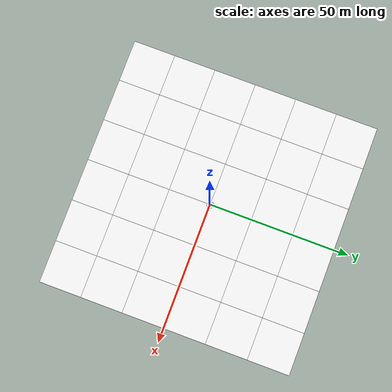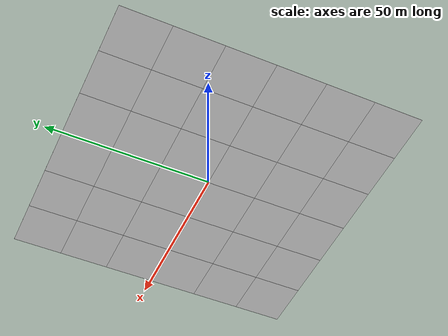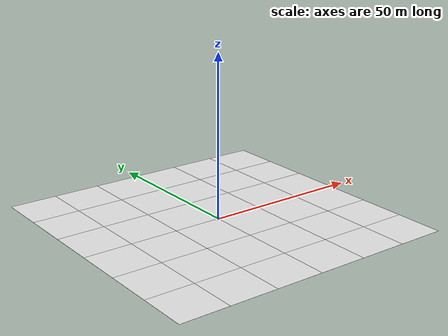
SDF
<?xml version="1.0" ?>
<sdf version="1.9">
  <model name="vio_ground">
    <static>true</static>
    <link name="link">
      <visual name="g0_0">
        <pose>-37.50 -37.50 0.01 0 0 0</pose>
        <cast_shadows>false</cast_shadows>
        <geometry><box><size>15.00 15.00 0.02</size></box></geometry>
        <material>
          <ambient>1 1 1 1</ambient>
          <diffuse>1 1 1 1</diffuse>
          <specular>0.05 0.05 0.05 1</specular>
          <pbr><metal>
            <albedo_map>model://vio_ground/materials/textures/ground0.png</albedo_map>
            <roughness>0.9</roughness>
            <metalness>0</metalness>
          </metal></pbr>
        </material>
      </visual>
      <visual name="g0_1">
        <pose>-37.50 -22.50 0.01 0 0 0</pose>
        <cast_shadows>false</cast_shadows>
        <geometry><box><size>15.00 15.00 0.02</size></box></geometry>
        <material>
          <ambient>1 1 1 1</ambient>
          <diffuse>1 1 1 1</diffuse>
          <specular>0.05 0.05 0.05 1</specular>
          <pbr><metal>
            <albedo_map>model://vio_ground/materials/textures/ground2.png</albedo_map>
            <roughness>0.9</roughness>
            <metalness>0</metalness>
          </metal></pbr>
        </material>
      </visual>
      <visual name="g0_2">
        <pose>-37.50 -7.50 0.01 0 0 0</pose>
        <cast_shadows>false</cast_shadows>
        <geometry><box><size>15.00 15.00 0.02</size></box></geometry>
        <material>
          <ambient>1 1 1 1</ambient>
          <diffuse>1 1 1 1</diffuse>
          <specular>0.05 0.05 0.05 1</specular>
          <pbr><metal>
            <albedo_map>model://vio_ground/materials/textures/ground0.png</albedo_map>
            <roughness>0.9</roughness>
            <metalness>0</metalness>
          </metal></pbr>
        </material>
      </visual>
      <visual name="g0_3">
        <pose>-37.50 7.50 0.01 0 0 0</pose>
        <cast_shadows>false</cast_shadows>
        <geometry><box><size>15.00 15.00 0.02</size></box></geometry>
        <material>
          <ambient>1 1 1 1</ambient>
          <diffuse>1 1 1 1</diffuse>
          <specular>0.05 0.05 0.05 1</specular>
          <pbr><metal>
            <albedo_map>model://vio_ground/materials/textures/ground2.png</albedo_map>
            <roughness>0.9</roughness>
            <metalness>0</metalness>
          </metal></pbr>
        </material>
      </visual>
      <visual name="g0_4">
        <pose>-37.50 22.50 0.01 0 0 0</pose>
        <cast_shadows>false</cast_shadows>
        <geometry><box><size>15.00 15.00 0.02</size></box></geometry>
        <material>
          <ambient>1 1 1 1</ambient>
          <diffuse>1 1 1 1</diffuse>
          <specular>0.05 0.05 0.05 1</specular>
          <pbr><metal>
            <albedo_map>model://vio_ground/materials/textures/ground0.png</albedo_map>
            <roughness>0.9</roughness>
            <metalness>0</metalness>
          </metal></pbr>
        </material>
      </visual>
      <visual name="g0_5">
        <pose>-37.50 37.50 0.01 0 0 0</pose>
        <cast_shadows>false</cast_shadows>
        <geometry><box><size>15.00 15.00 0.02</size></box></geometry>
        <material>
          <ambient>1 1 1 1</ambient>
          <diffuse>1 1 1 1</diffuse>
          <specular>0.05 0.05 0.05 1</specular>
          <pbr><metal>
            <albedo_map>model://vio_ground/materials/textures/ground2.png</albedo_map>
            <roughness>0.9</roughness>
            <metalness>0</metalness>
          </metal></pbr>
        </material>
      </visual>
      <visual name="g1_0">
        <pose>-22.50 -37.50 0.01 0 0 0</pose>
        <cast_shadows>false</cast_shadows>
        <geometry><box><size>15.00 15.00 0.02</size></box></geometry>
        <material>
          <ambient>1 1 1 1</ambient>
          <diffuse>1 1 1 1</diffuse>
          <specular>0.05 0.05 0.05 1</specular>
          <pbr><metal>
            <albedo_map>model://vio_ground/materials/textures/ground1.png</albedo_map>
            <roughness>0.9</roughness>
            <metalness>0</metalness>
          </metal></pbr>
        </material>
      </visual>
      <visual name="g1_1">
        <pose>-22.50 -22.50 0.01 0 0 0</pose>
        <cast_shadows>false</cast_shadows>
        <geometry><box><size>15.00 15.00 0.02</size></box></geometry>
        <material>
          <ambient>1 1 1 1</ambient>
          <diffuse>1 1 1 1</diffuse>
          <specular>0.05 0.05 0.05 1</specular>
          <pbr><metal>
            <albedo_map>model://vio_ground/materials/textures/ground3.png</albedo_map>
            <roughness>0.9</roughness>
            <metalness>0</metalness>
          </metal></pbr>
        </material>
      </visual>
      <visual name="g1_2">
        <pose>-22.50 -7.50 0.01 0 0 0</pose>
        <cast_shadows>false</cast_shadows>
        <geometry><box><size>15.00 15.00 0.02</size></box></geometry>
        <material>
          <ambient>1 1 1 1</ambient>
          <diffuse>1 1 1 1</diffuse>
          <specular>0.05 0.05 0.05 1</specular>
          <pbr><metal>
            <albedo_map>model://vio_ground/materials/textures/ground1.png</albedo_map>
            <roughness>0.9</roughness>
            <metalness>0</metalness>
          </metal></pbr>
        </material>
      </visual>
      <visual name="g1_3">
        <pose>-22.50 7.50 0.01 0 0 0</pose>
        <cast_shadows>false</cast_shadows>
        <geometry><box><size>15.00 15.00 0.02</size></box></geometry>
        <material>
          <ambient>1 1 1 1</ambient>
          <diffuse>1 1 1 1</diffuse>
          <specular>0.05 0.05 0.05 1</specular>
          <pbr><metal>
            <albedo_map>model://vio_ground/materials/textures/ground3.png</albedo_map>
            <roughness>0.9</roughness>
            <metalness>0</metalness>
          </metal></pbr>
        </material>
      </visual>
      <visual name="g1_4">
        <pose>-22.50 22.50 0.01 0 0 0</pose>
        <cast_shadows>false</cast_shadows>
        <geometry><box><size>15.00 15.00 0.02</size></box></geometry>
        <material>
          <ambient>1 1 1 1</ambient>
          <diffuse>1 1 1 1</diffuse>
          <specular>0.05 0.05 0.05 1</specular>
          <pbr><metal>
            <albedo_map>model://vio_ground/materials/textures/ground1.png</albedo_map>
            <roughness>0.9</roughness>
            <metalness>0</metalness>
          </metal></pbr>
        </material>
      </visual>
      <visual name="g1_5">
        <pose>-22.50 37.50 0.01 0 0 0</pose>
        <cast_shadows>false</cast_shadows>
        <geometry><box><size>15.00 15.00 0.02</size></box></geometry>
        <material>
          <ambient>1 1 1 1</ambient>
          <diffuse>1 1 1 1</diffuse>
          <specular>0.05 0.05 0.05 1</specular>
          <pbr><metal>
            <albedo_map>model://vio_ground/materials/textures/ground3.png</albedo_map>
            <roughness>0.9</roughness>
            <metalness>0</metalness>
          </metal></pbr>
        </material>
      </visual>
      <visual name="g2_0">
        <pose>-7.50 -37.50 0.01 0 0 0</pose>
        <cast_shadows>false</cast_shadows>
        <geometry><box><size>15.00 15.00 0.02</size></box></geometry>
        <material>
          <ambient>1 1 1 1</ambient>
          <diffuse>1 1 1 1</diffuse>
          <specular>0.05 0.05 0.05 1</specular>
          <pbr><metal>
            <albedo_map>model://vio_ground/materials/textures/ground2.png</albedo_map>
            <roughness>0.9</roughness>
            <metalness>0</metalness>
          </metal></pbr>
        </material>
      </visual>
      <visual name="g2_1">
        <pose>-7.50 -22.50 0.01 0 0 0</pose>
        <cast_shadows>false</cast_shadows>
        <geometry><box><size>15.00 15.00 0.02</size></box></geometry>
        <material>
          <ambient>1 1 1 1</ambient>
          <diffuse>1 1 1 1</diffuse>
          <specular>0.05 0.05 0.05 1</specular>
          <pbr><metal>
            <albedo_map>model://vio_ground/materials/textures/ground0.png</albedo_map>
            <roughness>0.9</roughness>
            <metalness>0</metalness>
          </metal></pbr>
        </material>
      </visual>
      <visual name="g2_2">
        <pose>-7.50 -7.50 0.01 0 0 0</pose>
        <cast_shadows>false</cast_shadows>
        <geometry><box><size>15.00 15.00 0.02</size></box></geometry>
        <material>
          <ambient>1 1 1 1</ambient>
          <diffuse>1 1 1 1</diffuse>
          <specular>0.05 0.05 0.05 1</specular>
          <pbr><metal>
            <albedo_map>model://vio_ground/materials/textures/ground2.png</albedo_map>
            <roughness>0.9</roughness>
            <metalness>0</metalness>
          </metal></pbr>
        </material>
      </visual>
      <visual name="g2_3">
        <pose>-7.50 7.50 0.01 0 0 0</pose>
        <cast_shadows>false</cast_shadows>
        <geometry><box><size>15.00 15.00 0.02</size></box></geometry>
        <material>
          <ambient>1 1 1 1</ambient>
          <diffuse>1 1 1 1</diffuse>
          <specular>0.05 0.05 0.05 1</specular>
          <pbr><metal>
            <albedo_map>model://vio_ground/materials/textures/ground0.png</albedo_map>
            <roughness>0.9</roughness>
            <metalness>0</metalness>
          </metal></pbr>
        </material>
      </visual>
      <visual name="g2_4">
        <pose>-7.50 22.50 0.01 0 0 0</pose>
        <cast_shadows>false</cast_shadows>
        <geometry><box><size>15.00 15.00 0.02</size></box></geometry>
        <material>
          <ambient>1 1 1 1</ambient>
          <diffuse>1 1 1 1</diffuse>
          <specular>0.05 0.05 0.05 1</specular>
          <pbr><metal>
            <albedo_map>model://vio_ground/materials/textures/ground2.png</albedo_map>
            <roughness>0.9</roughness>
            <metalness>0</metalness>
          </metal></pbr>
        </material>
      </visual>
      <visual name="g2_5">
        <pose>-7.50 37.50 0.01 0 0 0</pose>
        <cast_shadows>false</cast_shadows>
        <geometry><box><size>15.00 15.00 0.02</size></box></geometry>
        <material>
          <ambient>1 1 1 1</ambient>
          <diffuse>1 1 1 1</diffuse>
          <specular>0.05 0.05 0.05 1</specular>
          <pbr><metal>
            <albedo_map>model://vio_ground/materials/textures/ground0.png</albedo_map>
            <roughness>0.9</roughness>
            <metalness>0</metalness>
          </metal></pbr>
        </material>
      </visual>
      <visual name="g3_0">
        <pose>7.50 -37.50 0.01 0 0 0</pose>
        <cast_shadows>false</cast_shadows>
        <geometry><box><size>15.00 15.00 0.02</size></box></geometry>
        <material>
          <ambient>1 1 1 1</ambient>
          <diffuse>1 1 1 1</diffuse>
          <specular>0.05 0.05 0.05 1</specular>
          <pbr><metal>
            <albedo_map>model://vio_ground/materials/textures/ground3.png</albedo_map>
            <roughness>0.9</roughness>
            <metalness>0</metalness>
          </metal></pbr>
        </material>
      </visual>
      <visual name="g3_1">
        <pose>7.50 -22.50 0.01 0 0 0</pose>
        <cast_shadows>false</cast_shadows>
        <geometry><box><size>15.00 15.00 0.02</size></box></geometry>
        <material>
          <ambient>1 1 1 1</ambient>
          <diffuse>1 1 1 1</diffuse>
          <specular>0.05 0.05 0.05 1</specular>
          <pbr><metal>
            <albedo_map>model://vio_ground/materials/textures/ground1.png</albedo_map>
            <roughness>0.9</roughness>
            <metalness>0</metalness>
          </metal></pbr>
        </material>
      </visual>
      <visual name="g3_2">
        <pose>7.50 -7.50 0.01 0 0 0</pose>
        <cast_shadows>false</cast_shadows>
        <geometry><box><size>15.00 15.00 0.02</size></box></geometry>
        <material>
          <ambient>1 1 1 1</ambient>
          <diffuse>1 1 1 1</diffuse>
          <specular>0.05 0.05 0.05 1</specular>
          <pbr><metal>
            <albedo_map>model://vio_ground/materials/textures/ground3.png</albedo_map>
            <roughness>0.9</roughness>
            <metalness>0</metalness>
          </metal></pbr>
        </material>
      </visual>
      <visual name="g3_3">
        <pose>7.50 7.50 0.01 0 0 0</pose>
        <cast_shadows>false</cast_shadows>
        <geometry><box><size>15.00 15.00 0.02</size></box></geometry>
        <material>
          <ambient>1 1 1 1</ambient>
          <diffuse>1 1 1 1</diffuse>
          <specular>0.05 0.05 0.05 1</specular>
          <pbr><metal>
            <albedo_map>model://vio_ground/materials/textures/ground1.png</albedo_map>
            <roughness>0.9</roughness>
            <metalness>0</metalness>
          </metal></pbr>
        </material>
      </visual>
      <visual name="g3_4">
        <pose>7.50 22.50 0.01 0 0 0</pose>
        <cast_shadows>false</cast_shadows>
        <geometry><box><size>15.00 15.00 0.02</size></box></geometry>
        <material>
          <ambient>1 1 1 1</ambient>
          <diffuse>1 1 1 1</diffuse>
          <specular>0.05 0.05 0.05 1</specular>
          <pbr><metal>
            <albedo_map>model://vio_ground/materials/textures/ground3.png</albedo_map>
            <roughness>0.9</roughness>
            <metalness>0</metalness>
          </metal></pbr>
        </material>
      </visual>
      <visual name="g3_5">
        <pose>7.50 37.50 0.01 0 0 0</pose>
        <cast_shadows>false</cast_shadows>
        <geometry><box><size>15.00 15.00 0.02</size></box></geometry>
        <material>
          <ambient>1 1 1 1</ambient>
          <diffuse>1 1 1 1</diffuse>
          <specular>0.05 0.05 0.05 1</specular>
          <pbr><metal>
            <albedo_map>model://vio_ground/materials/textures/ground1.png</albedo_map>
            <roughness>0.9</roughness>
            <metalness>0</metalness>
          </metal></pbr>
        </material>
      </visual>
      <visual name="g4_0">
        <pose>22.50 -37.50 0.01 0 0 0</pose>
        <cast_shadows>false</cast_shadows>
        <geometry><box><size>15.00 15.00 0.02</size></box></geometry>
        <material>
          <ambient>1 1 1 1</ambient>
          <diffuse>1 1 1 1</diffuse>
          <specular>0.05 0.05 0.05 1</specular>
          <pbr><metal>
            <albedo_map>model://vio_ground/materials/textures/ground0.png</albedo_map>
            <roughness>0.9</roughness>
            <metalness>0</metalness>
          </metal></pbr>
        </material>
      </visual>
      <visual name="g4_1">
        <pose>22.50 -22.50 0.01 0 0 0</pose>
        <cast_shadows>false</cast_shadows>
        <geometry><box><size>15.00 15.00 0.02</size></box></geometry>
        <material>
          <ambient>1 1 1 1</ambient>
          <diffuse>1 1 1 1</diffuse>
          <specular>0.05 0.05 0.05 1</specular>
          <pbr><metal>
            <albedo_map>model://vio_ground/materials/textures/ground2.png</albedo_map>
            <roughness>0.9</roughness>
            <metalness>0</metalness>
          </metal></pbr>
        </material>
      </visual>
      <visual name="g4_2">
        <pose>22.50 -7.50 0.01 0 0 0</pose>
        <cast_shadows>false</cast_shadows>
        <geometry><box><size>15.00 15.00 0.02</size></box></geometry>
        <material>
          <ambient>1 1 1 1</ambient>
          <diffuse>1 1 1 1</diffuse>
          <specular>0.05 0.05 0.05 1</specular>
          <pbr><metal>
            <albedo_map>model://vio_ground/materials/textures/ground0.png</albedo_map>
            <roughness>0.9</roughness>
            <metalness>0</metalness>
          </metal></pbr>
        </material>
      </visual>
      <visual name="g4_3">
        <pose>22.50 7.50 0.01 0 0 0</pose>
        <cast_shadows>false</cast_shadows>
        <geometry><box><size>15.00 15.00 0.02</size></box></geometry>
        <material>
          <ambient>1 1 1 1</ambient>
          <diffuse>1 1 1 1</diffuse>
          <specular>0.05 0.05 0.05 1</specular>
          <pbr><metal>
            <albedo_map>model://vio_ground/materials/textures/ground2.png</albedo_map>
            <roughness>0.9</roughness>
            <metalness>0</metalness>
          </metal></pbr>
        </material>
      </visual>
      <visual name="g4_4">
        <pose>22.50 22.50 0.01 0 0 0</pose>
        <cast_shadows>false</cast_shadows>
        <geometry><box><size>15.00 15.00 0.02</size></box></geometry>
        <material>
          <ambient>1 1 1 1</ambient>
          <diffuse>1 1 1 1</diffuse>
          <specular>0.05 0.05 0.05 1</specular>
          <pbr><metal>
            <albedo_map>model://vio_ground/materials/textures/ground0.png</albedo_map>
            <roughness>0.9</roughness>
            <metalness>0</metalness>
          </metal></pbr>
        </material>
      </visual>
      <visual name="g4_5">
        <pose>22.50 37.50 0.01 0 0 0</pose>
        <cast_shadows>false</cast_shadows>
        <geometry><box><size>15.00 15.00 0.02</size></box></geometry>
        <material>
          <ambient>1 1 1 1</ambient>
          <diffuse>1 1 1 1</diffuse>
          <specular>0.05 0.05 0.05 1</specular>
          <pbr><metal>
            <albedo_map>model://vio_ground/materials/textures/ground2.png</albedo_map>
            <roughness>0.9</roughness>
            <metalness>0</metalness>
          </metal></pbr>
        </material>
      </visual>
      <visual name="g5_0">
        <pose>37.50 -37.50 0.01 0 0 0</pose>
        <cast_shadows>false</cast_shadows>
        <geometry><box><size>15.00 15.00 0.02</size></box></geometry>
        <material>
          <ambient>1 1 1 1</ambient>
          <diffuse>1 1 1 1</diffuse>
          <specular>0.05 0.05 0.05 1</specular>
          <pbr><metal>
            <albedo_map>model://vio_ground/materials/textures/ground1.png</albedo_map>
            <roughness>0.9</roughness>
            <metalness>0</metalness>
          </metal></pbr>
        </material>
      </visual>
      <visual name="g5_1">
        <pose>37.50 -22.50 0.01 0 0 0</pose>
        <cast_shadows>false</cast_shadows>
        <geometry><box><size>15.00 15.00 0.02</size></box></geometry>
        <material>
          <ambient>1 1 1 1</ambient>
          <diffuse>1 1 1 1</diffuse>
          <specular>0.05 0.05 0.05 1</specular>
          <pbr><metal>
            <albedo_map>model://vio_ground/materials/textures/ground3.png</albedo_map>
            <roughness>0.9</roughness>
            <metalness>0</metalness>
          </metal></pbr>
        </material>
      </visual>
      <visual name="g5_2">
        <pose>37.50 -7.50 0.01 0 0 0</pose>
        <cast_shadows>false</cast_shadows>
        <geometry><box><size>15.00 15.00 0.02</size></box></geometry>
        <material>
          <ambient>1 1 1 1</ambient>
          <diffuse>1 1 1 1</diffuse>
          <specular>0.05 0.05 0.05 1</specular>
          <pbr><metal>
            <albedo_map>model://vio_ground/materials/textures/ground1.png</albedo_map>
            <roughness>0.9</roughness>
            <metalness>0</metalness>
          </metal></pbr>
        </material>
      </visual>
      <visual name="g5_3">
        <pose>37.50 7.50 0.01 0 0 0</pose>
        <cast_shadows>false</cast_shadows>
        <geometry><box><size>15.00 15.00 0.02</size></box></geometry>
        <material>
          <ambient>1 1 1 1</ambient>
          <diffuse>1 1 1 1</diffuse>
          <specular>0.05 0.05 0.05 1</specular>
          <pbr><metal>
            <albedo_map>model://vio_ground/materials/textures/ground3.png</albedo_map>
            <roughness>0.9</roughness>
            <metalness>0</metalness>
          </metal></pbr>
        </material>
      </visual>
      <visual name="g5_4">
        <pose>37.50 22.50 0.01 0 0 0</pose>
        <cast_shadows>false</cast_shadows>
        <geometry><box><size>15.00 15.00 0.02</size></box></geometry>
        <material>
          <ambient>1 1 1 1</ambient>
          <diffuse>1 1 1 1</diffuse>
          <specular>0.05 0.05 0.05 1</specular>
          <pbr><metal>
            <albedo_map>model://vio_ground/materials/textures/ground1.png</albedo_map>
            <roughness>0.9</roughness>
            <metalness>0</metalness>
          </metal></pbr>
        </material>
      </visual>
      <visual name="g5_5">
        <pose>37.50 37.50 0.01 0 0 0</pose>
        <cast_shadows>false</cast_shadows>
        <geometry><box><size>15.00 15.00 0.02</size></box></geometry>
        <material>
          <ambient>1 1 1 1</ambient>
          <diffuse>1 1 1 1</diffuse>
          <specular>0.05 0.05 0.05 1</specular>
          <pbr><metal>
            <albedo_map>model://vio_ground/materials/textures/ground3.png</albedo_map>
            <roughness>0.9</roughness>
            <metalness>0</metalness>
          </metal></pbr>
        </material>
      </visual>
      <visual name="takeoff_pad">
        <pose>0 0 0.025 0 0 0</pose>
        <cast_shadows>false</cast_shadows>
        <geometry><box><size>2.00 2.00 0.01</size></box></geometry>
        <material>
          <ambient>1 1 1 1</ambient>
          <diffuse>1 1 1 1</diffuse>
          <specular>0.05 0.05 0.05 1</specular>
          <pbr><metal>
            <albedo_map>model://vio_ground/materials/textures/pad.png</albedo_map>
            <roughness>0.9</roughness>
            <metalness>0</metalness>
          </metal></pbr>
        </material>
      </visual>
    </link>
  </model>
</sdf>
